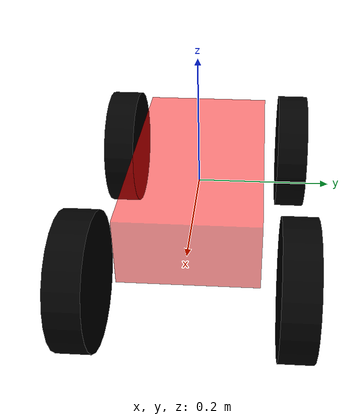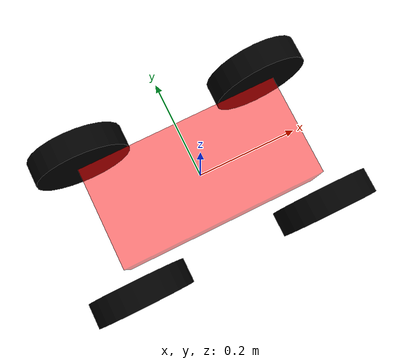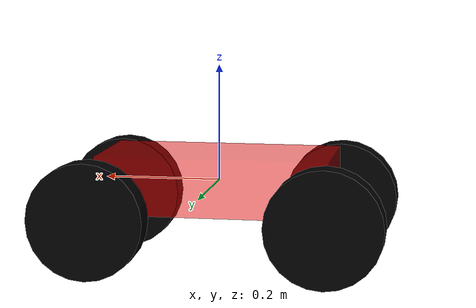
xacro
<?xml version="1.0"?>
<robot xmlns:xacro="http://www.ros.org/wiki/xacro" name="robo_simples">

  <!-- ========== PARÂMETROS AJUSTÁVEIS ========== -->
  <xacro:property name="base_length" value="0.4" />  <!-- Comprimento da base (X) -->
  <xacro:property name="base_width"  value="0.2" />  <!-- Largura da base (Y) -->
  <xacro:property name="base_height" value="0.1" />  <!-- Altura da base (Z) -->

  <xacro:property name="wheel_radius" value="0.1" /> <!-- Raio da roda -->
  <xacro:property name="wheel_width"  value="0.05" /> <!-- Largura da roda -->
  <xacro:property name="wheel_y_offset" value="0.15" /> <!-- Posição Y (distância do centro) -->
  <xacro:property name="wheel_z_offset" value="-0.05" /> <!-- Posição Z (altura em relação à base) -->

  <!-- ========== BASE DO ROBÔ ========== -->
  <link name="base_link">
    <visual>
      <geometry>
        <box size="${base_length} ${base_width} ${base_height}"/>
      </geometry>
      <material name="vermelho">
        <color rgba="1 0 0 0.5"/>
      </material>
    </visual>
    <collision>
      <geometry>
        <box size="${base_length} ${base_width} ${base_height}"/>
      </geometry>
    </collision>
    <inertial>
      <mass value="2.0"/>
      <inertia ixx="0.01" ixy="0" ixz="0" iyy="0.01" iyz="0" izz="0.01"/>
    </inertial>
  </link>

  <!-- ========== DEFINIÇÃO DA RODA (MACRO REUTILIZÁVEL) ========== -->
  <xacro:macro name="wheel" params="prefix xyz_origin">
    <link name="${prefix}_wheel">
      <visual>
        <geometry>
          <cylinder radius="${wheel_radius}" length="${wheel_width}"/>
        </geometry>
        <material name="preto">
          <color rgba="0 0 0 1"/>
        </material>
      </visual>
      <collision>
        <geometry>
          <cylinder radius="${wheel_radius}" length="${wheel_width}"/>
        </geometry>
      </collision>
      <inertial>
        <mass value="0.5"/>
        <inertia ixx="0.001" ixy="0" ixz="0" iyy="0.001" iyz="0" izz="0.001"/>
      </inertial>
    </link>

    <joint name="${prefix}_wheel_joint" type="continuous">
      <parent link="base_link"/>
      <child link="${prefix}_wheel"/>
      <origin xyz="${xyz_origin}" rpy="1.5708 0 0"/> <!-- Rotação de 90° em X -->
      <axis xyz="0 0 1"/> <!-- Eixo de rotação em X -->
    </joint>
  </xacro:macro>

  <!-- ========== Geração do modelo do robo a partir das macros ========== -->
  <!-- Roda direita -->
  <xacro:wheel prefix="front_right" xyz_origin="${base_length/2} -${wheel_y_offset} ${wheel_z_offset}"/>
  <!-- Roda esquerda -->
  <xacro:wheel prefix="front_left" xyz_origin="${base_length/2} ${wheel_y_offset} ${wheel_z_offset}"/>

  <xacro:wheel prefix="rear_right" xyz_origin="-${base_length/2} -${wheel_y_offset} ${wheel_z_offset}"/>

  <xacro:wheel prefix="rear_left" xyz_origin="-${base_length/2} ${wheel_y_offset} ${wheel_z_offset}"/>

</robot>
